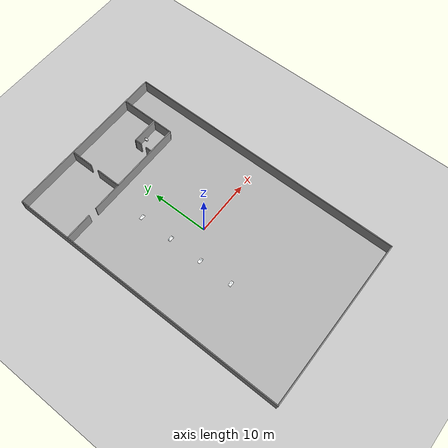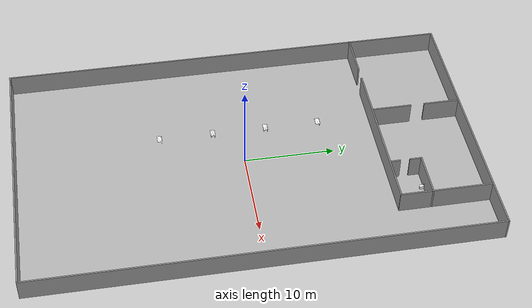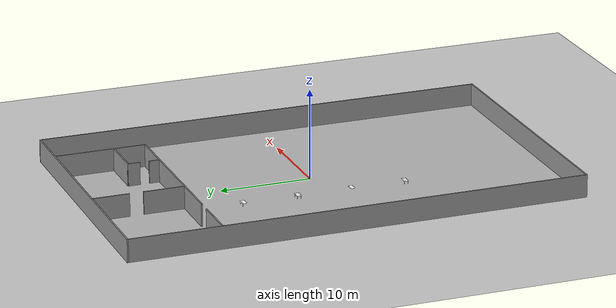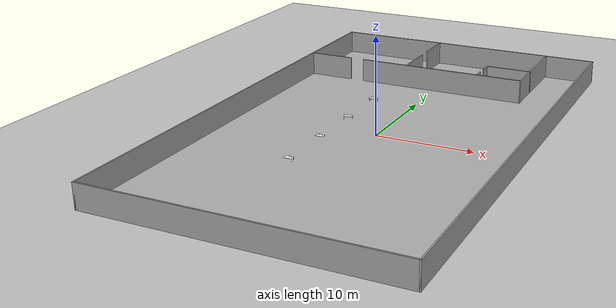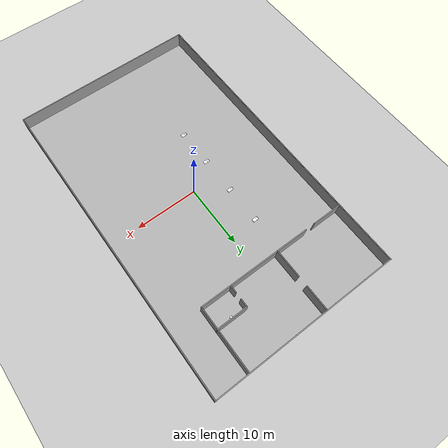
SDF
<sdf version="1.6">
 <world name="warehouse">
  <model name="ground_plane">
   <static>1</static>
   <link name="link">
    <collision name="collision">
     <geometry><plane><normal>0 0 1</normal><size>100 100</size></plane></geometry>
     <surface><friction><ode><mu>100</mu><mu2>50</mu2></ode></friction></surface>
    </collision>
    <visual name="visual">
     <cast_shadows>0</cast_shadows>
     <geometry><plane><normal>0 0 1</normal><size>100 100</size></plane></geometry>
     <material>
      <script><uri>file://media/materials/scripts/gazebo.material</uri><name>Gazebo/Grey</name></script>
     </material>
    </visual>
   </link>
  </model>
  <light name="sun" type="directional">
   <pose>0 0 10 0 -0 0</pose>
   <diffuse>0.8 0.8 0.8 1</diffuse>
   <specular>0.2 0.2 0.2 1</specular>
   <attenuation>
    <range>1000</range>
    <constant>0.9</constant>
    <linear>0.01</linear>
    <quadratic>0.001</quadratic>
   </attenuation>
   <direction>-0.5 0.1 -0.9</direction>
  </light>
  <gravity>0 0 -9.8</gravity>
  <magnetic_field>6e-06 2.3e-05 -4.2e-05</magnetic_field>
  <atmosphere type="adiabatic"/>
  <physics name="default_physics" default="0" type="ode">
   <max_step_size>0.002</max_step_size>
   <real_time_factor>1</real_time_factor>
   <real_time_update_rate>500</real_time_update_rate>
  </physics>
  <scene><ambient>0.4 0.4 0.4 1</ambient><background>0.7 0.7 0.7 1</background><shadows>1</shadows></scene>
  <spherical_coordinates>
   <surface_model>EARTH_WGS84</surface_model>
   <latitude_deg>0</latitude_deg>
   <longitude_deg>0</longitude_deg>
   <elevation>0</elevation>
   <heading_deg>0</heading_deg>
  </spherical_coordinates>
  <model name="wall_30x50">
   <link name="Wall_3">
    <collision name="Wall_3_Collision">
     <geometry><box><size>30.15 0.15 2.5</size></box></geometry>
     <pose>0 0 1.25 0 -0 0</pose>
    </collision>
    <visual name="Wall_3_Visual">
     <pose>0 0 1.25 0 -0 0</pose>
     <geometry><box><size>30.15 0.15 2.5</size></box></geometry>
     <material>
      <script><uri>file://media/materials/scripts/gazebo.material</uri><name>Gazebo/Grey</name></script>
      <ambient>1 1 1 1</ambient>
     </material>
     <meta><layer>0</layer></meta>
    </visual>
    <pose>0 25 0 0 -0 3.14159</pose>
   </link>
   <link name="Wall_4">
    <collision name="Wall_4_Collision">
     <geometry><box><size>50.15 0.15 2.5</size></box></geometry>
     <pose>0 0 1.25 0 -0 0</pose>
    </collision>
    <visual name="Wall_4_Visual">
     <pose>0 0 1.25 0 -0 0</pose>
     <geometry><box><size>50.15 0.15 2.5</size></box></geometry>
     <material>
      <script><uri>file://media/materials/scripts/gazebo.material</uri><name>Gazebo/Grey</name></script>
      <ambient>1 1 1 1</ambient>
     </material>
     <meta><layer>0</layer></meta>
    </visual>
    <pose>-15 0 0 0 -0 -1.5708</pose>
   </link>
   <link name="Wall_5">
    <collision name="Wall_5_Collision">
     <geometry><box><size>30.15 0.15 2.5</size></box></geometry>
     <pose>0 0 1.25 0 -0 0</pose>
    </collision>
    <visual name="Wall_5_Visual">
     <pose>0 0 1.25 0 -0 0</pose>
     <geometry><box><size>30.15 0.15 2.5</size></box></geometry>
     <material>
      <script><uri>file://media/materials/scripts/gazebo.material</uri><name>Gazebo/Grey</name></script>
      <ambient>1 1 1 1</ambient>
     </material>
     <meta><layer>0</layer></meta>
    </visual>
    <pose>0 -25 0 0 -0 0</pose>
   </link>
   <link name="Wall_6">
    <collision name="Wall_6_Collision">
     <geometry><box><size>50.15 0.15 2.5</size></box></geometry>
     <pose>0 0 1.25 0 -0 0</pose>
    </collision>
    <visual name="Wall_6_Visual">
     <pose>0 0 1.25 0 -0 0</pose>
     <geometry><box><size>50.15 0.15 2.5</size></box></geometry>
     <material>
      <script><uri>file://media/materials/scripts/gazebo.material</uri><name>Gazebo/Grey</name></script>
      <ambient>1 1 1 1</ambient>
     </material>
     <meta><layer>0</layer></meta>
    </visual>
    <pose>15 0 0 0 -0 1.5708</pose>
   </link>
   <static>1</static>
  </model>
  <model name="ground_30x50">
   <link name="main">
    <pose>0 0 0.01 0 -0 0</pose>
    <collision name="main_Collision"><geometry><box><size>30 50 0.01</size></box></geometry></collision>
    <visual name="main_Visual">
     <geometry><box><size>30 50 0.01</size></box></geometry>
     <material>
      <script>
       <uri>model://ground_30x50/materials/scripts</uri>
       <uri>model://ground_30x50/materials/textures</uri>
       <name>ground_30x50</name>
      </script>
     </material>
    </visual>
   </link>
   <static>1</static>
   <pose>-0.034664 -0.043829 0 0 -0 0</pose>
  </model>
  <model name="office">
   <pose>-2.63091 19.9403 0 0 -0 0</pose>
   <link name="Wall_11">
    <collision name="Wall_11_Collision">
     <geometry><box><size>5 0.15 2.5</size></box></geometry>
     <pose>0 0 1.25 0 -0 0</pose>
    </collision>
    <visual name="Wall_11_Visual">
     <pose>0 0 1.25 0 -0 0</pose>
     <geometry><box><size>5 0.15 2.5</size></box></geometry>
     <material>
      <script><uri>file://media/materials/scripts/gazebo.material</uri><name>Gazebo/Grey</name></script>
      <ambient>1 1 1 1</ambient>
     </material>
     <meta><layer>0</layer></meta>
    </visual>
    <pose>9.92866 -1.47024 0 0 -0 3.14159</pose>
   </link>
   <link name="Wall_12">
    <pose>7.50366 -3.14524 0 0 -0 -1.5708</pose>
    <visual name="Wall_12_Visual_0">
     <pose>-1.06777 0 1.25 0 -0 0</pose>
     <geometry><box><size>1.36447 0.15 2.5</size></box></geometry>
     <material>
      <script><uri>file://media/materials/scripts/gazebo.material</uri><name>Gazebo/Grey</name></script>
      <ambient>1 1 1 1</ambient>
     </material>
     <meta><layer>0</layer></meta>
    </visual>
    <collision name="Wall_12_Collision_0">
     <geometry><box><size>1.36447 0.15 2.5</size></box></geometry>
     <pose>-1.06777 0 1.25 0 -0 0</pose>
    </collision>
    <visual name="Wall_12_Visual_1">
     <pose>1.18223 0 1.25 0 -0 0</pose>
     <geometry><box><size>1.13553 0.15 2.5</size></box></geometry>
     <material>
      <script><uri>file://media/materials/scripts/gazebo.material</uri><name>Gazebo/Grey</name></script>
      <ambient>1 1 1 1</ambient>
     </material>
     <meta><layer>0</layer></meta>
    </visual>
    <collision name="Wall_12_Collision_1">
     <geometry><box><size>1.13553 0.15 2.5</size></box></geometry>
     <pose>1.18223 0 1.25 0 -0 0</pose>
    </collision>
   </link>
   <link name="Wall_2">
    <pose>-0.053657 -4.93833 0 0 -0 0</pose>
    <visual name="Wall_2_Visual_0">
     <pose>-9.89721 0 1.25 0 -0 0</pose>
     <geometry><box><size>4.95558 0.15 2.5</size></box></geometry>
     <material>
      <script><uri>file://media/materials/scripts/gazebo.material</uri><name>Gazebo/Grey</name></script>
      <ambient>1 1 1 1</ambient>
     </material>
     <meta><layer>0</layer></meta>
    </visual>
    <collision name="Wall_2_Collision_0">
     <geometry><box><size>4.95558 0.15 2.5</size></box></geometry>
     <pose>-9.89721 0 1.25 0 -0 0</pose>
    </collision>
    <visual name="Wall_2_Visual_1">
     <pose>3.22779 0 1.25 0 -0 0</pose>
     <geometry><box><size>18.2944 0.15 2.5</size></box></geometry>
     <material>
      <script><uri>file://media/materials/scripts/gazebo.material</uri><name>Gazebo/Grey</name></script>
      <ambient>1 1 1 1</ambient>
     </material>
     <meta><layer>0</layer></meta>
    </visual>
    <collision name="Wall_2_Collision_1">
     <geometry><box><size>18.2944 0.15 2.5</size></box></geometry>
     <pose>3.22779 0 1.25 0 -0 0</pose>
    </collision>
   </link>
   <link name="Wall_7">
    <collision name="Wall_7_Collision">
     <geometry><box><size>10 0.15 2.5</size></box></geometry>
     <pose>0 0 1.25 0 -0 0</pose>
    </collision>
    <visual name="Wall_7_Visual">
     <pose>0 0 1.25 0 -0 0</pose>
     <geometry><box><size>10 0.15 2.5</size></box></geometry>
     <material>
      <script><uri>file://media/materials/scripts/gazebo.material</uri><name>Gazebo/Grey</name></script>
      <ambient>1 1 1 1</ambient>
     </material>
     <meta><layer>0</layer></meta>
    </visual>
    <pose>12.3463 -0.013329 0 0 -0 1.5708</pose>
   </link>
   <link name="Wall_9">
    <pose>-0.663212 0.013329 0 0 -0 1.5708</pose>
    <visual name="Wall_9_Visual_0">
     <pose>-2.7401 0 1.25 0 -0 0</pose>
     <geometry><box><size>4.51981 0.15 2.5</size></box></geometry>
     <material>
      <script><uri>file://media/materials/scripts/gazebo.material</uri><name>Gazebo/Grey</name></script>
      <ambient>1 1 1 1</ambient>
     </material>
     <meta><layer>0</layer></meta>
    </visual>
    <collision name="Wall_9_Collision_0">
     <geometry><box><size>4.51981 0.15 2.5</size></box></geometry>
     <pose>-2.7401 0 1.25 0 -0 0</pose>
    </collision>
    <visual name="Wall_9_Visual_1">
     <pose>3.0099 0 1.25 0 -0 0</pose>
     <geometry><box><size>3.98019 0.15 2.5</size></box></geometry>
     <material>
      <script><uri>file://media/materials/scripts/gazebo.material</uri><name>Gazebo/Grey</name></script>
      <ambient>1 1 1 1</ambient>
     </material>
     <meta><layer>0</layer></meta>
    </visual>
    <collision name="Wall_9_Collision_1">
     <geometry><box><size>3.98019 0.15 2.5</size></box></geometry>
     <pose>3.0099 0 1.25 0 -0 0</pose>
    </collision>
   </link>
   <static>1</static>
  </model>
  <model name="table_2">
   <static>1</static>
   <link name="table_link">
    <collision name="table_collision">
     <pose>0.45 0.25 0 0 -0 0</pose>
     <geometry><box><size>0.75 0.5 0.75</size></box></geometry>
    </collision>
    <visual name="table_mesh"><geometry><mesh><uri>model://table/meshes/model.dae</uri></mesh></geometry></visual>
   </link>
   <pose>-5 8.8 0 0 -0 0</pose>
  </model>
  <model name="table_1">
   <static>1</static>
   <link name="table_link">
    <collision name="table_collision">
     <pose>0.45 0.25 0 0 -0 0</pose>
     <geometry><box><size>0.75 0.5 0.75</size></box></geometry>
    </collision>
    <visual name="table_mesh"><geometry><mesh><uri>model://table/meshes/model.dae</uri></mesh></geometry></visual>
   </link>
   <pose>-5 2.8 0 0 -0 0</pose>
  </model>
  <model name="table_0">
   <static>1</static>
   <link name="table_link">
    <collision name="table_collision">
     <pose>0.45 0.25 0 0 -0 0</pose>
     <geometry><box><size>0.75 0.5 0.75</size></box></geometry>
    </collision>
    <visual name="table_mesh"><geometry><mesh><uri>model://table/meshes/model.dae</uri></mesh></geometry></visual>
   </link>
   <pose>-5 -3.2 0 0 -0 0</pose>
  </model>
  <model name="table">
   <static>1</static>
   <link name="table_link">
    <collision name="table_collision">
     <pose>0.45 0.25 0 0 -0 0</pose>
     <geometry><box><size>0.75 0.5 0.75</size></box></geometry>
    </collision>
    <visual name="table_mesh"><geometry><mesh><uri>model://table/meshes/model.dae</uri></mesh></geometry></visual>
   </link>
   <pose>-5 -9.2 0 0 -0 0</pose>
  </model>
  <model name="toilet">
   <static>1</static>
   <link name="toilet_link">
    <collision name="toilet_collision">
     <pose>0.05 -0.25 0 0 -0 0</pose>
     <geometry><box><size>0.25 0.45 0.75</size></box></geometry>
    </collision>
    <visual name="toilet_mesh">
     <geometry><mesh><uri>model://toilet/meshes/model.dae</uri></mesh></geometry>
    </visual>
   </link>
   <pose>6.98837 18.3937 0 0 -0 0</pose>
  </model>
 </world>
</sdf>
